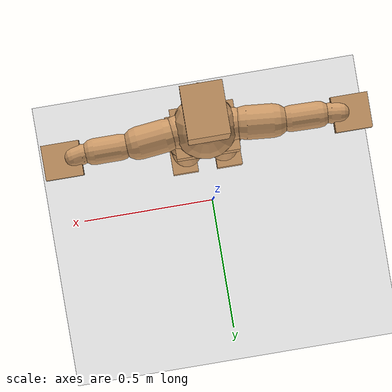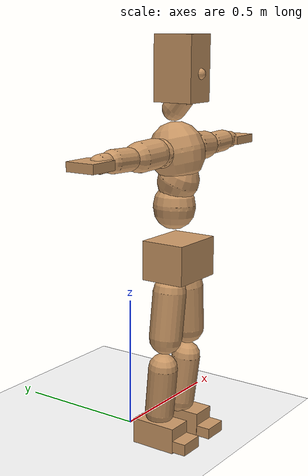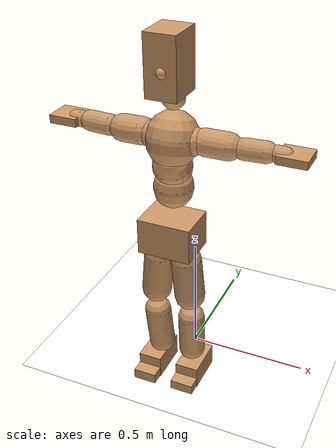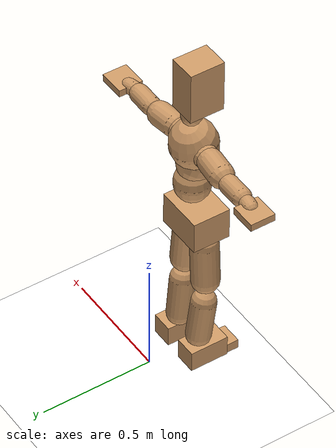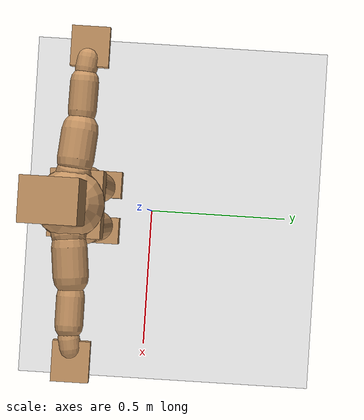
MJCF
<mujoco model="humanoid">
  <option integrator="implicitfast" />

  <visual>
    <global offwidth="1280" offheight="960" />
    <headlight active="1" ambient="0.34 0.34 0.34" diffuse="0.5 0.5 0.5" />
  </visual>

  <default>
    <joint damping="2" stiffness="2" armature="0.01" limited="true" solimplimit="0 .99 .01" />
    <geom condim="1" friction="0.7 0.005 0.0001" solimp=".99 .99 .003" solref="0.015 1" margin="0.001" rgba="0.8 0.6 .4 1" />
    <default class="smplcontact">
      <geom condim="3" friction="1. 0.005 0.0001" solref="0.015 1" solimp="0.98 0.98 0.001" priority="1" />
    </default>
    <default class="stiff_medium">
      <joint stiffness="10" />
    </default>
    <default class="stiff_medium_higher">
      <joint stiffness="50" />
    </default>
    <default class="stiff_high">
      <joint stiffness="100" />
    </default>
  </default>

  <asset>
    <texture type="skybox" builtin="gradient" rgb1="0.99 0.99 0.99" rgb2="0.608 0.828 0.892" width="100" />
    <texture builtin="flat" height="1278" mark="cross" markrgb="1 1 1" name="texgeom" random="0.01" rgb1="0.8 0.6 0.4" rgb2="0.8 0.6 0.4" type="cube" width="127" />
    <texture name="texplane" type="2d" builtin="checker" markrgb="1 1 1" rgb1="0.756 0.772 0.76" rgb2="0.6 0.6 0.6" width="100" height="100" />
    <material name="MatPlane" reflectance="0.5" texture="texplane" texrepeat="1 1" texuniform="true" />
    <material name="geom" texture="texgeom" texuniform="true" />
  </asset>

  <worldbody>
    <light name="tracking_light" pos="0 0 7" dir="0 0 -1" directional="true" cutoff="100" exponent="1" diffuse="1 1 1" specular="0.1 0.1 0.1" mode="trackcom" />
    <camera name="back" pos="0 3 2.4" xyaxes="-1 0 0 0 -1 2" mode="trackcom" />
    <camera name="side" pos="-3 0 2.4" xyaxes="0 -1 0 1 0 2" mode="trackcom" />
    <camera name="front_side" pos="-2.8 -2.8 0.8" xyaxes="0.5 -0.5 0 0.1 0.1 1" mode="trackcom" />
    <geom condim="3" name="floor" pos="0 0 0" rgba="1 1 1 1" size="100 100 .2" type="plane" material="MatPlane" />
    <body name="Pelvis" pos="-0.0018 -0.2233 0.714475" euler="90 0 0">
      <site name="Pelvis" size="0.01" />
      <freejoint name="Pelvis" />
      <geom type="box" pos="-0.0000 -0.0121 -0.0055" size="0.1069 0.0722 0.083" quat="1.0000 0.0000 0.0000 0.0000" density="3165.830099" name="Pelvis" />
      <body name="L_Hip" pos="0.052125 -0.06855 -0.0051">
        <joint name="L_Hip_x" type="hinge" pos="0 0 0" axis="1 0 0" stiffness="6.246094795918367" range="-160.0 22.92" class="stiff_medium" damping="8.291075045961078" armature="0.004891370984683404"/>
        <joint name="L_Hip_y" type="hinge" pos="0 0 0" axis="0 1 0" stiffness="6.283432346938776" range="-70.0 70.0" class="stiff_medium" damping="6.622206330553066" armature="0.006979245460609145"/>
        <joint name="L_Hip_z" type="hinge" pos="0 0 0" axis="0 0 1" stiffness="6.280236020408163" range="-28.65 90.0" class="stiff_medium" damping="5.540637852842338" armature="0.004888139190404853"/>
        <geom type="capsule" density="2040.816327" fromto="0.005175 -0.05625 -0.000675 0.02055 -0.22515 -0.0027" size="0.0615" name="L_Hip" />
        <body name="L_Knee" pos="0.025725 -0.2814 -0.003375">
          <joint name="L_Knee_x" type="hinge" pos="0 0 0" axis="1 0 0" range="-5.16 171.89" damping="4.62915338976834" armature="0.005182973512521489" stiffness="1.292034693877551"/>
          <joint name="L_Knee_y" type="hinge" pos="0 0 0" axis="0 1 0" range="-4.58 6.88" damping="5.469884734588188" armature="0.007381715461698138" stiffness="1.2666279591836735"/>
          <joint name="L_Knee_z" type="hinge" pos="0 0 0" axis="0 0 1" range="-6.88 4.58" damping="4.641672627872137" armature="0.005166231774225991" stiffness="1.3032422448979593"/>
          <geom type="capsule" density="1234.567901" fromto="-0.002025 -0.0597 -0.006525 -0.008175 -0.2388 -0.02625" size="0.0541" name="L_Knee" />
          <body name="L_Ankle" pos="-0.0102 -0.2985 -0.032775">
            <joint name="L_Ankle_x" type="hinge" pos="0 0 0" axis="1 0 0" range="-45.84 45.84" class="stiff_medium" damping="4.385268345779494" armature="0.007122436468331711" stiffness="7.5"/>
            <joint name="L_Ankle_y" type="hinge" pos="0 0 0" axis="0 1 0" range="-74.48 22.92" class="stiff_medium" damping="2.2090505910878844" armature="0.007229488168867751" stiffness="7.5"/>
            <joint name="L_Ankle_z" type="hinge" pos="0 0 0" axis="0 0 1" range="-4.58 4.58" class="stiff_medium" damping="4.627293284407198" armature="0.00793031227404443" stiffness="7.5"/>
            <geom type="box" pos="0.017475 -0.017925 0.01815" size="0.0483 0.0464 0.085" quat="1.0000 0.0000 0.0000 0.0000" density="449.071558" name="L_Ankle" class="smplcontact" />
            <body name="L_Toe" pos="0.0198 -0.04185 0.089475">
              <joint name="L_Toe_x" type="hinge" pos="0 0 0" axis="1 0 0" range="-91.67 22.92" armature="0.00833667788750395" damping="1.5814560905226502" stiffness="1.5"/>
              <joint name="L_Toe_y" type="hinge" pos="0 0 0" axis="0 1 0" range="-4.58 4.58" armature="0.008828055290798205" damping="1.6273956455759186" stiffness="1.5"/>
              <joint name="L_Toe_z" type="hinge" pos="0 0 0" axis="0 0 1" range="-4.58 4.58" armature="0.009821593951992827" damping="1.7165308577470573" stiffness="1.5"/>
              <geom type="box" pos="-0.00225 0.004125 0.0186" size="0.0478 0.02 0.0496" quat="1.0000 0.0000 0.0000 0.0000" density="423.206892" name="L_Toe" class="smplcontact" />
            </body>
          </body>
        </body>
      </body>
      <body name="R_Hip" pos="-0.050775 -0.067875 -0.003225">
        <joint name="R_Hip_x" type="hinge" pos="0 0 0" axis="1 0 0" stiffness="6.246094795918367" range="-160.0 22.92" class="stiff_medium" damping="8.291075045961078" armature="0.004891370984683404"/>
        <joint name="R_Hip_y" type="hinge" pos="0 0 0" axis="0 1 0" stiffness="6.283432346938776" range="-70.0 70.0" class="stiff_medium" damping="6.622206330553066" armature="0.006979245460609145"/>
        <joint name="R_Hip_z" type="hinge" pos="0 0 0" axis="0 0 1" stiffness="6.280236020408163" range="-90.0 28.65" class="stiff_medium" damping="5.540637852842338" armature="0.004888139190404853"/>
        <geom type="capsule" density="2040.816327" fromto="-0.005775 -0.057375 -0.00135 -0.02295 -0.229575 -0.005325" size="0.0606" name="R_Hip" />
        <body name="R_Knee" pos="-0.028725 -0.28695 -0.006675">
          <joint name="R_Knee_x" type="hinge" pos="0 0 0" axis="1 0 0" range="-5.16 171.89" damping="4.62915338976834" armature="0.005182973512521489" stiffness="1.292034693877551"/>
          <joint name="R_Knee_y" type="hinge" pos="0 0 0" axis="0 1 0" range="-6.88 4.58" damping="5.469884734588188" armature="0.007381715461698138" stiffness="1.2666279591836735"/>
          <joint name="R_Knee_z" type="hinge" pos="0 0 0" axis="0 0 1" range="-4.58 6.88" damping="4.641672627872137" armature="0.005166231774225991" stiffness="1.3032422448979593"/>
          <geom type="capsule" density="1234.567901" fromto="0.0024 -0.059775 -0.006375 0.00945 -0.239025 -0.02535" size="0.0541" name="R_Knee" />
          <body name="R_Ankle" pos="0.01185 -0.2988 -0.031725">
            <joint name="R_Ankle_x" type="hinge" pos="0 0 0" axis="1 0 0" range="-45.84 45.84" class="stiff_medium" damping="4.385268345779494" armature="0.007122436468331711" stiffness="7.5"/>
            <joint name="R_Ankle_y" type="hinge" pos="0 0 0" axis="0 1 0" range="-22.92 74.48" class="stiff_medium" damping="2.2090505910878844" armature="0.007229488168867751" stiffness="7.5"/>
            <joint name="R_Ankle_z" type="hinge" pos="0 0 0" axis="0 0 1" range="-4.58 4.58" class="stiff_medium" damping="4.627293284407198" armature="0.00793031227404443" stiffness="7.5"/>
            <geom type="box" pos="-0.0159 -0.01305 0.0192" size="0.0483 0.0478 0.0865" quat="1.0000 0.0000 0.0000 0.0000" density="434.700981" name="R_Ankle" class="smplcontact" />
            <body name="R_Toe" pos="-0.01905 -0.036075 0.092475">
              <joint name="R_Toe_x" type="hinge" pos="0 0 0" axis="1 0 0" range="-91.67 22.92" armature="0.00833667788750395" damping="1.5814560905226502" stiffness="1.5"/>
              <joint name="R_Toe_y" type="hinge" pos="0 0 0" axis="0 1 0" range="-4.58 4.58" armature="0.008828055290798205" damping="1.6273956455759186" stiffness="1.5"/>
              <joint name="R_Toe_z" type="hinge" pos="0 0 0" axis="0 0 1" range="-4.58 4.58" armature="0.009821593951992827" damping="1.7165308577470573" stiffness="1.5"/>
              <geom type="box" pos="0.00315 0.003375 0.017025" size="0.0479 0.0216 0.0493" quat="1.0000 0.0000 0.0000 0.0000" density="407.384095" name="R_Toe" class="smplcontact" />
            </body>
          </body>
        </body>
      </body>
      <body name="Torso" pos="-0.0025 0.109 -0.0267">
        <joint name="Torso_x" type="hinge" pos="0 0 0" axis="1 0 0" range="-25.78 57.3" class="stiff_medium" damping="12.833128643120638" armature="0.0083898677557267" stiffness="8.724237142857143"/>
        <joint name="Torso_y" type="hinge" pos="0 0 0" axis="0 1 0" range="-57.3 57.3" class="stiff_high" damping="9.641007877053582" armature="0.0026152511802961754" stiffness="88.85287346938776"/>
        <joint name="Torso_z" type="hinge" pos="0 0 0" axis="0 0 1" range="-34.38 34.38" class="stiff_high" damping="15.25662184807281" armature="0.006404603814601961" stiffness="90.85827826086955"/>
        <geom type="capsule" density="2040.816327" fromto="0.0025 0.0608 0.0005 0.003 0.0743 0.0006" size="0.0769" name="Torso" />
        <body name="Spine" pos="0.0055 0.1352 0.0011">
          <joint name="Spine_x" type="hinge" pos="0 0 0" axis="1 0 0" stiffness="8.524132708333333" range="-25.78 57.3" class="stiff_medium" damping="12.593328186154569" armature="0.008268911088118511"/>
          <joint name="Spine_y" type="hinge" pos="0 0 0" axis="0 1 0" stiffness="8.372724772727274" range="-57.3 57.3" class="stiff_high" damping="3.70583596472787" armature="0.0025628641978587448"/>
          <joint name="Spine_z" type="hinge" pos="0 0 0" axis="0 0 1" stiffness="17.091765581395343" range="-34.38 34.38" class="stiff_high" damping="7.91233078272408" armature="0.005087324565503502"/>
          <geom type="capsule" density="2040.816327" fromto="0.0007 0.0238 0.0114 0.0008 0.0291 0.014" size="0.0755" name="Spine" />
          <body name="Chest" pos="0.0015 0.0529 0.0254">
            <joint name="Chest_x" type="hinge" pos="0 0 0" axis="1 0 0" stiffness="8.200278372093024" range="-25.78 57.3" class="stiff_medium" damping="12.31981661549885" armature="0.008226164178146715"/>
            <joint name="Chest_y" type="hinge" pos="0 0 0" axis="0 1 0" stiffness="6.66116392857143" range="-57.3 57.3" class="stiff_high" damping="3.2862373670032503" armature="0.002533189992228513"/>
            <joint name="Chest_z" type="hinge" pos="0 0 0" axis="0 0 1" stiffness="16.64932651162791" range="-34.38 34.38" class="stiff_high" damping="7.360514262532789" armature="0.004519466278837098"/>
            <geom type="capsule" density="2040.816327" fromto="-0.0009 0.0682 -0.0173 -0.001 0.0833 -0.0212" size="0.1002" name="Chest" />
            <body name="Neck" pos="-0.0028 0.2139 -0.0429">
              <joint name="Neck_x" type="hinge" pos="0 0 0" axis="1 0 0" range="-28.65 57.3" class="stiff_medium_higher" damping="9.999999999999998" armature="0.009999999999999995" stiffness="50.0"/>
              <joint name="Neck_y" type="hinge" pos="0 0 0" axis="0 1 0" range="-40.11 40.11" class="stiff_medium_higher" damping="10.0" armature="0.01" stiffness="50.0"/>
              <joint name="Neck_z" type="hinge" pos="0 0 0" axis="0 0 1" range="-40.11 40.11" class="stiff_medium_higher" damping="9.99999999999999" armature="0.00999999999999998" stiffness="50.0"/>
              <geom type="capsule" density="1000" fromto="0.001 0.013 0.0103 0.0041 0.052 0.0411" size="0.0436" name="Neck" />
              <body name="Head" pos="0.0052 0.065 0.0513">
                <joint name="Head_x" type="hinge" pos="0 0 0" axis="1 0 0" range="-28.65 57.3" class="stiff_medium_higher" damping="2.000000000000001" armature="0.010000000000000009" stiffness="50.0"/>
                <joint name="Head_y" type="hinge" pos="0 0 0" axis="0 1 0" range="-40.11 40.11" class="stiff_medium_higher" damping="2.0" armature="0.01" stiffness="50.0"/>
                <joint name="Head_z" type="hinge" pos="0 0 0" axis="0 0 1" range="-40.11 40.11" class="stiff_medium_higher" damping="1.9999999999999982" armature="0.009999999999999983" stiffness="50.0"/>
                <geom type="box" pos="-0.0042 0.0876 -0.0116" size="0.0606 0.1154 0.076" quat="1.0000 0.0000 0.0000 0.0000" density="1018.069894" name="Head" />
                <geom type="capsule" name="nose" size="0.02 0.01" pos="0 0.07 0.05" quat="1 0 0 0" mass="0" contype="0" conaffinity="0" />
              </body>
            </body>
            <body name="L_Thorax" pos="0.04334 0.066935 -0.018755">
              <joint name="L_Thorax_x" type="hinge" pos="0 0 0" axis="1 0 0" range="-10.89 4.58" class="stiff_medium_higher" damping="8.43470362156275" armature="0.004456108006307083" stiffness="19.956940306122444"/>
              <joint name="L_Thorax_y" type="hinge" pos="0 0 0" axis="0 1 0" range="-28.65 17.19" class="stiff_medium_higher" damping="6.022763730189366" armature="0.0023084620474975964" stiffness="19.641693367346935"/>
              <joint name="L_Thorax_z" type="hinge" pos="0 0 0" axis="0 0 1" range="-31.51 40.11" class="stiff_medium_higher" damping="6.0206596523268665" armature="0.0023064402545495094" stiffness="19.64517755102041"/>
              <geom type="capsule" density="1000" fromto="0.01001 0.003355 -0.00099 0.04004 0.01342 -0.003905" size="0.0521" name="L_Thorax" />
              <body name="L_Shoulder" pos="0.05005 0.016775 -0.004895">
                <joint name="L_Shoulder_x" type="hinge" pos="0 0 0" axis="1 0 0" range="-97.4 97.4" class="stiff_medium" damping="2.7507326192703454" armature="0.00520758025412558" stiffness="4.036066215805471"/>
                <joint name="L_Shoulder_y" type="hinge" pos="0 0 0" axis="0 1 0" range="-108.86 80.21" class="stiff_medium" damping="1.829876722109635" armature="0.00235368225666454" stiffness="3.9517852040816326"/>
                <joint name="L_Shoulder_z" type="hinge" pos="0 0 0" axis="0 0 1" range="-97.4 85.94" class="stiff_medium" damping="1.829909535734246" armature="0.00235074892225839" stiffness="3.9568582653061224"/>
                <geom type="capsule" density="1000" fromto="0.028545 -0.00143 -0.003025 0.114235 -0.00561 -0.0121" size="0.0517" name="L_Shoulder" />
                <body name="L_Elbow" pos="0.14278 -0.00704 -0.015125">
                  <joint name="L_Elbow_x" type="hinge" pos="0 0 0" axis="1 0 0" range="-17.19 4.58" damping="2.63838098611622" armature="0.006602890217626892" stiffness="0.8433948163265306"/>
                  <joint name="L_Elbow_y" type="hinge" pos="0 0 0" axis="0 1 0" range="-180.0 17.19" damping="1.6493311800762023" armature="0.0025828362461048143" stiffness="0.842575551020408"/>
                  <joint name="L_Elbow_z" type="hinge" pos="0 0 0" axis="0 0 1" range="-100.84 4.58" damping="1.6457692537144113" armature="0.0025674453810837134" stiffness="0.8439693265306122"/>
                  <geom type="capsule" density="1000" fromto="0.02739 0.00099 -0.00011 0.10967 0.00396 -0.000495" size="0.0405" name="L_Elbow" />
                  <body name="L_Wrist" pos="0.13706 0.00495 -0.00066">
                    <joint name="L_Wrist_x" type="hinge" pos="0 0 0" axis="1 0 0" range="-180.0 22.92" armature="0.007461834395238918" damping="1.2279494204587518" stiffness="1.0103814285714288"/>
                    <joint name="L_Wrist_y" type="hinge" pos="0 0 0" axis="0 1 0" range="-17.19 17.19" armature="0.0036649156166127725" damping="0.8549575346764129" stiffness="0.9972294897959184"/>
                    <joint name="L_Wrist_z" type="hinge" pos="0 0 0" axis="0 0 1" range="-22.92 22.92" armature="0.0034414222692761886" damping="0.8306797080467474" stiffness="1.002534306122449"/>
                    <geom type="capsule" density="1000" fromto="0.00924 -0.00088 -0.00165 0.03696 -0.003575 -0.0066" size="0.0318" name="L_Wrist" class="smplcontact" />
                    <body name="L_Hand" pos="0.0462 -0.00451 -0.008195">
                      <joint name="L_Hand_x" type="hinge" pos="0 0 0" axis="1 0 0" range="-17.19 17.19" armature="0.009696126030368792" damping="1.4605299472044844" stiffness="1.0999999999999999"/>
                      <joint name="L_Hand_y" type="hinge" pos="0 0 0" axis="0 1 0" range="-51.57 51.57" armature="0.006325063576496694" damping="1.1796245109479848" stiffness="1.0999999999999999"/>
                      <joint name="L_Hand_z" type="hinge" pos="0 0 0" axis="0 0 1" range="-91.67 91.67" armature="0.005426460820316561" damping="1.0926213344382598" stiffness="1.0999999999999999"/>
                      <geom type="box" pos="0.027115 0.00055 -0.00319" size="0.0585 0.0158 0.0538" quat="1.0000 0.0000 0.0000 0.0000" density="400.552564" name="L_Hand" class="smplcontact" />
                    </body>
                  </body>
                </body>
              </body>
            </body>
            <body name="R_Thorax" pos="-0.04499 0.06534 -0.02123">
              <joint name="R_Thorax_x" type="hinge" pos="0 0 0" axis="1 0 0" range="-10.89 4.58" class="stiff_medium_higher" damping="8.43470362156275" armature="0.004456108006307083" stiffness="19.956940306122444"/>
              <joint name="R_Thorax_y" type="hinge" pos="0 0 0" axis="0 1 0" range="-17.19 28.65" class="stiff_medium_higher" damping="6.022763730189366" armature="0.0023084620474975964" stiffness="19.641693367346935"/>
              <joint name="R_Thorax_z" type="hinge" pos="0 0 0" axis="0 0 1" range="-40.11 31.51" class="stiff_medium_higher" damping="6.0206596523268665" armature="0.0023064402545495094" stiffness="19.64517755102041"/>
              <geom type="capsule" density="1000" fromto="-0.01056 0.003575 -0.00099 -0.04224 0.0143 -0.004015" size="0.0511" name="R_Thorax" />
              <body name="R_Shoulder" pos="-0.0528 0.01793 -0.005005">
                <joint name="R_Shoulder_x" type="hinge" pos="0 0 0" axis="1 0 0" range="-97.4 97.4" class="stiff_medium" damping="2.7507326192703454" armature="0.00520758025412558" stiffness="4.036066215805471"/>
                <joint name="R_Shoulder_y" type="hinge" pos="0 0 0" axis="0 1 0" range="-80.21 108.86" class="stiff_medium" damping="1.829876722109635" armature="0.00235368225666454" stiffness="3.9517852040816326"/>
                <joint name="R_Shoulder_z" type="hinge" pos="0 0 0" axis="0 0 1" range="-85.94 97.4" class="stiff_medium" damping="1.829909535734246" armature="0.00235074892225839" stiffness="3.9568582653061224"/>
                <geom type="capsule" density="1000" fromto="-0.027885 -0.001485 -0.002365 -0.11165 -0.005885 -0.009405" size="0.0531" name="R_Shoulder" />
                <body name="R_Elbow" pos="-0.139535 -0.007315 -0.01177">
                  <joint name="R_Elbow_x" type="hinge" pos="0 0 0" axis="1 0 0" range="-17.19 4.58" damping="2.63838098611622" armature="0.006602890217626892" stiffness="0.8433948163265306"/>
                  <joint name="R_Elbow_y" type="hinge" pos="0 0 0" axis="0 1 0" range="-17.19 180.0" damping="1.6493311800762023" armature="0.0025828362461048143" stiffness="0.842575551020408"/>
                  <joint name="R_Elbow_z" type="hinge" pos="0 0 0" axis="0 0 1" range="-4.58 100.84" damping="1.6457692537144113" armature="0.0025674453810837134" stiffness="0.8439693265306122"/>
                  <geom type="capsule" density="1000" fromto="-0.028105 0.00088 -0.000605 -0.11231 0.00341 -0.00242" size="0.0408" name="R_Elbow" />
                  <body name="R_Wrist" pos="-0.140415 0.00429 -0.00308">
                    <joint name="R_Wrist_x" type="hinge" pos="0 0 0" axis="1 0 0" range="-180.0 22.92" armature="0.007461834395238918" damping="1.2279494204587518" stiffness="1.0103814285714288"/>
                    <joint name="R_Wrist_y" type="hinge" pos="0 0 0" axis="0 1 0" range="-17.19 17.19" armature="0.0036649156166127725" damping="0.8549575346764129" stiffness="0.9972294897959184"/>
                    <joint name="R_Wrist_z" type="hinge" pos="0 0 0" axis="0 0 1" range="-22.92 22.92" armature="0.0034414222692761886" damping="0.8306797080467474" stiffness="1.002534306122449"/>
                    <geom type="capsule" density="1000" fromto="-0.009295 -0.00066 -0.001155 -0.037235 -0.002695 -0.004565" size="0.0326" name="R_Wrist" class="smplcontact" />
                    <body name="R_Hand" pos="-0.04653 -0.003355 -0.005665">
                      <joint name="R_Hand_x" type="hinge" pos="0 0 0" axis="1 0 0" range="-17.19 17.19" armature="0.009696126030368792" damping="1.4605299472044844" stiffness="1.0999999999999999"/>
                      <joint name="R_Hand_y" type="hinge" pos="0 0 0" axis="0 1 0" range="-51.57 51.57" armature="0.006325063576496694" damping="1.1796245109479848" stiffness="1.0999999999999999"/>
                      <joint name="R_Hand_z" type="hinge" pos="0 0 0" axis="0 0 1" range="-91.67 91.67" armature="0.005426460820316561" damping="1.0926213344382598" stiffness="1.0999999999999999"/>
                      <geom type="box" pos="-0.02541 -0.000495 -0.004345" size="0.0569 0.0164 0.0546" quat="1.0000 0.0000 0.0000 0.0000" density="403.679611" name="R_Hand" class="smplcontact" />
                    </body>
                  </body>
                </body>
              </body>
            </body>
          </body>
        </body>
      </body>
    </body>
  </worldbody>
  <actuator>
    <general name="L_Hip_x" joint="L_Hip_x" biastype="affine" gainprm="179.46908180691764" biasprm="-134.4938865848036 -112.42970632653059 -1.1054766727948104" ctrllimited="true" ctrlrange="-1 1" forcerange="-224.85941265306118 224.85941265306118" />
    <general name="L_Hip_y" joint="L_Hip_y" biastype="affine" gainprm="138.1798943032993" biasprm="0.0 -113.10178224489796 -1.3244412661106133" ctrllimited="true" ctrlrange="-1 1" forcerange="-226.20356448979592 226.20356448979592" />
    <general name="L_Hip_z" joint="L_Hip_z" biastype="affine" gainprm="117.04788889139031" biasprm="60.52160120932823 -113.04424836734694 -1.1081275705684677" ctrllimited="true" ctrlrange="-1 1" forcerange="-226.08849673469388 226.08849673469388" />
    <general name="L_Knee_x" joint="L_Knee_x" biastype="affine" gainprm="179.66355466802756" biasprm="169.1912141756579 -116.2831224489796 -1.157288347442085" ctrllimited="true" ctrlrange="-1 1" forcerange="-232.5662448979592 232.5662448979592" />
    <general name="L_Knee_y" joint="L_Knee_y" biastype="affine" gainprm="11.400491346869197" biasprm="2.2880567275566452 -113.99651632653062 -1.367471183647047" ctrllimited="true" ctrlrange="-1 1" forcerange="-227.99303265306125 227.99303265306125" />
    <general name="L_Knee_z" joint="L_Knee_z" biastype="affine" gainprm="11.730044191831292" biasprm="-2.3541973508910967 -117.29180204081634 -1.1604181569680343" ctrllimited="true" ctrlrange="-1 1" forcerange="-234.58360408163267 234.58360408163267" />
    <general name="L_Ankle_x" joint="L_Ankle_x" biastype="affine" gainprm="54.00397771520855" biasprm="0.0 -67.5 -1.4617561152598313" ctrllimited="true" ctrlrange="-1 1" forcerange="-135.0 135.0" />
    <general name="L_Ankle_y" joint="L_Ankle_y" biastype="affine" gainprm="57.37333583618361" biasprm="-30.371346978579332 -67.5 -1.4727003940585897" ctrllimited="true" ctrlrange="-1 1" forcerange="-135.0 135.0" />
    <general name="L_Ankle_z" joint="L_Ankle_z" biastype="affine" gainprm="5.395685382540469" biasprm="0.0 -67.5 -1.5424310948023994" ctrllimited="true" ctrlrange="-1 1" forcerange="-135.0 135.0" />
    <general name="L_Toe_x" joint="L_Toe_x" biastype="affine" gainprm="53.999265326228155" biasprm="-32.39767424014474 -54.0 -0.6325824362090602" ctrllimited="true" ctrlrange="-1 1" forcerange="-108.0 108.0" />
    <general name="L_Toe_y" joint="L_Toe_y" biastype="affine" gainprm="4.3165483060323755" biasprm="0.0 -54.0 -0.6509582582303675" ctrllimited="true" ctrlrange="-1 1" forcerange="-108.0 108.0" />
    <general name="L_Toe_z" joint="L_Toe_z" biastype="affine" gainprm="4.3165483060323755" biasprm="0.0 -54.0 -0.6866123430988229" ctrllimited="true" ctrlrange="-1 1" forcerange="-108.0 108.0" />
    <general name="R_Hip_x" joint="R_Hip_x" biastype="affine" gainprm="179.46908180691764" biasprm="-134.4938865848036 -112.42970632653059 -1.1054766727948104" ctrllimited="true" ctrlrange="-1 1" forcerange="-224.85941265306118 224.85941265306118" />
    <general name="R_Hip_y" joint="R_Hip_y" biastype="affine" gainprm="138.1798943032993" biasprm="0.0 -113.10178224489796 -1.3244412661106133" ctrllimited="true" ctrlrange="-1 1" forcerange="-226.20356448979592 226.20356448979592" />
    <general name="R_Hip_z" joint="R_Hip_z" biastype="affine" gainprm="117.04788889139031" biasprm="-60.52160120932823 -113.04424836734694 -1.1081275705684677" ctrllimited="true" ctrlrange="-1 1" forcerange="-226.08849673469388 226.08849673469388" />
    <general name="R_Knee_x" joint="R_Knee_x" biastype="affine" gainprm="179.66355466802756" biasprm="169.1912141756579 -116.2831224489796 -1.157288347442085" ctrllimited="true" ctrlrange="-1 1" forcerange="-232.5662448979592 232.5662448979592" />
    <general name="R_Knee_y" joint="R_Knee_y" biastype="affine" gainprm="11.400491346869197" biasprm="-2.2880567275566452 -113.99651632653062 -1.367471183647047" ctrllimited="true" ctrlrange="-1 1" forcerange="-227.99303265306125 227.99303265306125" />
    <general name="R_Knee_z" joint="R_Knee_z" biastype="affine" gainprm="11.730044191831292" biasprm="2.3541973508910967 -117.29180204081634 -1.1604181569680343" ctrllimited="true" ctrlrange="-1 1" forcerange="-234.58360408163267 234.58360408163267" />
    <general name="R_Ankle_x" joint="R_Ankle_x" biastype="affine" gainprm="54.00397771520855" biasprm="0.0 -67.5 -1.4617561152598313" ctrllimited="true" ctrlrange="-1 1" forcerange="-135.0 135.0" />
    <general name="R_Ankle_y" joint="R_Ankle_y" biastype="affine" gainprm="57.37333583618361" biasprm="30.371346978579332 -67.5 -1.4727003940585897" ctrllimited="true" ctrlrange="-1 1" forcerange="-135.0 135.0" />
    <general name="R_Ankle_z" joint="R_Ankle_z" biastype="affine" gainprm="5.395685382540469" biasprm="0.0 -67.5 -1.5424310948023994" ctrllimited="true" ctrlrange="-1 1" forcerange="-135.0 135.0" />
    <general name="R_Toe_x" joint="R_Toe_x" biastype="affine" gainprm="53.999265326228155" biasprm="-32.39767424014474 -54.0 -0.6325824362090602" ctrllimited="true" ctrlrange="-1 1" forcerange="-108.0 108.0" />
    <general name="R_Toe_y" joint="R_Toe_y" biastype="affine" gainprm="4.3165483060323755" biasprm="0.0 -54.0 -0.6509582582303675" ctrllimited="true" ctrlrange="-1 1" forcerange="-108.0 108.0" />
    <general name="R_Toe_z" joint="R_Toe_z" biastype="affine" gainprm="4.3165483060323755" biasprm="0.0 -54.0 -0.6866123430988229" ctrllimited="true" ctrlrange="-1 1" forcerange="-108.0 108.0" />
    <general name="Torso_x" joint="Torso_x" biastype="affine" gainprm="151.80377221252243" biasprm="57.593342563056154 -209.38169142857143 -3.4221676381655035" ctrllimited="true" ctrlrange="-1 1" forcerange="-314.07253714285713 314.07253714285713" />
    <general name="Torso_y" joint="Torso_y" biastype="affine" gainprm="213.26260438991383" biasprm="0.0 -213.24689632653062 -1.9282015754107165" ctrllimited="true" ctrlrange="-1 1" forcerange="-319.8703444897959 319.8703444897959" />
    <general name="Torso_z" joint="Torso_z" biastype="affine" gainprm="130.84555825179245" biasprm="0.0 -218.05986782608693 -3.0513243696145618" ctrllimited="true" ctrlrange="-1 1" forcerange="-327.0898017391304 327.0898017391304" />
    <general name="Spine_x" joint="Spine_x" biastype="affine" gainprm="148.32190812518058" biasprm="56.272346462514335 -204.579185 -3.3582208496412185" ctrllimited="true" ctrlrange="-1 1" forcerange="-306.86877749999996 306.86877749999996" />
    <general name="Spine_y" joint="Spine_y" biastype="affine" gainprm="200.96019646308363" biasprm="0.0 -200.94539454545458 -1.852917982363935" ctrllimited="true" ctrlrange="-1 1" forcerange="-301.41809181818184 301.41809181818184" />
    <general name="Spine_z" joint="Spine_z" biastype="affine" gainprm="123.06977700949903" biasprm="0.0 -205.10118697674412 -2.63744359424136" ctrllimited="true" ctrlrange="-1 1" forcerange="-307.6517804651162 307.6517804651162" />
    <general name="Chest_x" joint="Chest_x" biastype="affine" gainprm="142.68676672729774" biasprm="54.13441125715483 -196.80668093023257 -3.285284430799693" ctrllimited="true" ctrlrange="-1 1" forcerange="-295.21002139534886 295.21002139534886" />
    <general name="Chest_y" joint="Chest_y" biastype="affine" gainprm="159.87971038041" biasprm="0.0 -159.8679342857143 -1.6431186835016252" ctrllimited="true" ctrlrange="-1 1" forcerange="-239.80190142857145 239.80190142857145" />
    <general name="Chest_z" joint="Chest_z" biastype="affine" gainprm="119.88398105429127" biasprm="0.0 -199.7919181395349 -2.453504754177596" ctrllimited="true" ctrlrange="-1 1" forcerange="-299.68787720930237 299.68787720930237" />
    <general name="Neck_x" joint="Neck_x" biastype="affine" gainprm="27.00198885760427" biasprm="9.000662952534757 -36.0 -0.7999999999999998" ctrllimited="true" ctrlrange="-1 1" forcerange="-72.0 72.0" />
    <general name="Neck_y" joint="Neck_y" biastype="affine" gainprm="25.20185626709732" biasprm="0.0 -36.0 -0.8" ctrllimited="true" ctrlrange="-1 1" forcerange="-72.0 72.0" />
    <general name="Neck_z" joint="Neck_z" biastype="affine" gainprm="25.20185626709732" biasprm="0.0 -36.0 -0.7999999999999993" ctrllimited="true" ctrlrange="-1 1" forcerange="-72.0 72.0" />
    <general name="Head_x" joint="Head_x" biastype="affine" gainprm="18.001325905069514" biasprm="6.000441968356505 -24.0 -0.8000000000000004" ctrllimited="true" ctrlrange="-1 1" forcerange="-48.0 48.0" />
    <general name="Head_y" joint="Head_y" biastype="affine" gainprm="16.801237511398213" biasprm="0.0 -24.0 -0.8" ctrllimited="true" ctrlrange="-1 1" forcerange="-48.0 48.0" />
    <general name="Head_z" joint="Head_z" biastype="affine" gainprm="16.801237511398213" biasprm="0.0 -24.0 -0.7999999999999994" ctrllimited="true" ctrlrange="-1 1" forcerange="-48.0 48.0" />
    <general name="L_Thorax_x" joint="L_Thorax_x" biastype="affine" gainprm="6.466106980153143" biasprm="-2.6374360080650514 -47.89665673469387 -0.6747762897250201" ctrllimited="true" ctrlrange="-1 1" forcerange="-95.79331346938774 95.79331346938774" />
    <general name="L_Thorax_y" joint="L_Thorax_y" biastype="affine" gainprm="18.857414593762904" biasprm="-4.714353648440726 -47.140064081632644 -0.48182109841514936" ctrllimited="true" ctrlrange="-1 1" forcerange="-94.28012816326529 94.28012816326529" />
    <general name="L_Thorax_z" joint="L_Thorax_z" biastype="affine" gainprm="29.46787972505706" biasprm="3.538449673771163 -47.14842612244898 -0.4816527721861493" ctrllimited="true" ctrlrange="-1 1" forcerange="-94.29685224489796 94.29685224489796" />
    <general name="L_Shoulder_x" joint="L_Shoulder_x" biastype="affine" gainprm="32.93334506047744" biasprm="0.0 -19.373117835866264 -0.7335286984720921" ctrllimited="true" ctrlrange="-1 1" forcerange="-38.74623567173253 38.74623567173253" />
    <general name="L_Shoulder_y" joint="L_Shoulder_y" biastype="affine" gainprm="31.297133640991394" biasprm="-4.74249155770034 -18.968568979591836 -0.4879671258959027" ctrllimited="true" ctrlrange="-1 1" forcerange="-37.93713795918367 37.93713795918367" />
    <general name="L_Shoulder_z" joint="L_Shoulder_z" biastype="affine" gainprm="30.387595059587213" biasprm="-1.8994318718384982 -18.992919673469387 -0.487975876195799" ctrllimited="true" ctrlrange="-1 1" forcerange="-37.985839346938775 37.985839346938775" />
    <general name="L_Elbow_x" joint="L_Elbow_x" biastype="affine" gainprm="5.768185641845626" biasprm="-3.3411493313584466 -30.3622133877551 -0.4221409577785952" ctrllimited="true" ctrlrange="-1 1" forcerange="-60.7244267755102 60.7244267755102" />
    <general name="L_Elbow_y" joint="L_Elbow_y" biastype="affine" gainprm="52.19676802931011" biasprm="-43.09628177317298 -30.33271983673469 -0.26389298881219236" ctrllimited="true" ctrlrange="-1 1" forcerange="-60.66543967346938 60.66543967346938" />
    <general name="L_Elbow_z" joint="L_Elbow_z" biastype="affine" gainprm="27.951141407994328" biasprm="-25.522451830141666 -30.382895755102037 -0.2633230805943058" ctrllimited="true" ctrlrange="-1 1" forcerange="-60.765791510204075 60.765791510204075" />
    <general name="L_Wrist_x" joint="L_Wrist_x" biastype="affine" gainprm="10.735167645580283" biasprm="-8.310073594361082 -6.062288571428573 -0.49117976818350073" ctrllimited="true" ctrlrange="-1 1" forcerange="-12.124577142857145 12.124577142857145" />
    <general name="L_Wrist_y" joint="L_Wrist_y" biastype="affine" gainprm="1.7951453047962525" biasprm="0.0 -5.9833769387755105 -0.3419830138705652" ctrllimited="true" ctrlrange="-1 1" forcerange="-11.966753877551021 11.966753877551021" />
    <general name="L_Wrist_z" joint="L_Wrist_z" biastype="affine" gainprm="2.4062595700697247" biasprm="0.0 -6.015205836734694 -0.332271883218699" ctrllimited="true" ctrlrange="-1 1" forcerange="-12.030411673469388 12.030411673469388" />
    <general name="L_Hand_x" joint="L_Hand_x" biastype="affine" gainprm="1.9801458495576467" biasprm="0.0 -6.6 -0.5842119788817938" ctrllimited="true" ctrlrange="-1 1" forcerange="-13.2 13.2" />
    <general name="L_Hand_y" joint="L_Hand_y" biastype="affine" gainprm="5.940437548672939" biasprm="0.0 -6.6 -0.47184980437919394" ctrllimited="true" ctrlrange="-1 1" forcerange="-13.2 13.2" />
    <general name="L_Hand_z" joint="L_Hand_z" biastype="affine" gainprm="10.55962594700113" biasprm="0.0 -6.6 -0.43704853377530395" ctrllimited="true" ctrlrange="-1 1" forcerange="-13.2 13.2" />
    <general name="R_Thorax_x" joint="R_Thorax_x" biastype="affine" gainprm="6.466106980153143" biasprm="-2.6374360080650514 -47.89665673469387 -0.6747762897250201" ctrllimited="true" ctrlrange="-1 1" forcerange="-95.79331346938774 95.79331346938774" />
    <general name="R_Thorax_y" joint="R_Thorax_y" biastype="affine" gainprm="18.857414593762904" biasprm="4.714353648440723 -47.140064081632644 -0.48182109841514936" ctrllimited="true" ctrlrange="-1 1" forcerange="-94.28012816326529 94.28012816326529" />
    <general name="R_Thorax_z" joint="R_Thorax_z" biastype="affine" gainprm="29.46787972505706" biasprm="-3.538449673771163 -47.14842612244898 -0.4816527721861493" ctrllimited="true" ctrlrange="-1 1" forcerange="-94.29685224489796 94.29685224489796" />
    <general name="R_Shoulder_x" joint="R_Shoulder_x" biastype="affine" gainprm="32.93334506047744" biasprm="0.0 -19.373117835866264 -0.7335286984720921" ctrllimited="true" ctrlrange="-1 1" forcerange="-38.74623567173253 38.74623567173253" />
    <general name="R_Shoulder_y" joint="R_Shoulder_y" biastype="affine" gainprm="31.297133640991394" biasprm="4.74249155770034 -18.968568979591836 -0.4879671258959027" ctrllimited="true" ctrlrange="-1 1" forcerange="-37.93713795918367 37.93713795918367" />
    <general name="R_Shoulder_z" joint="R_Shoulder_z" biastype="affine" gainprm="30.387595059587213" biasprm="1.899431871838494 -18.992919673469387 -0.487975876195799" ctrllimited="true" ctrlrange="-1 1" forcerange="-37.985839346938775 37.985839346938775" />
    <general name="R_Elbow_x" joint="R_Elbow_x" biastype="affine" gainprm="5.768185641845626" biasprm="-3.3411493313584466 -30.3622133877551 -0.4221409577785952" ctrllimited="true" ctrlrange="-1 1" forcerange="-60.7244267755102 60.7244267755102" />
    <general name="R_Elbow_y" joint="R_Elbow_y" biastype="affine" gainprm="52.19676802931011" biasprm="43.09628177317298 -30.33271983673469 -0.26389298881219236" ctrllimited="true" ctrlrange="-1 1" forcerange="-60.66543967346938 60.66543967346938" />
    <general name="R_Elbow_z" joint="R_Elbow_z" biastype="affine" gainprm="27.951141407994328" biasprm="25.522451830141662 -30.382895755102037 -0.2633230805943058" ctrllimited="true" ctrlrange="-1 1" forcerange="-60.765791510204075 60.765791510204075" />
    <general name="R_Wrist_x" joint="R_Wrist_x" biastype="affine" gainprm="10.735167645580283" biasprm="-8.310073594361082 -6.062288571428573 -0.49117976818350073" ctrllimited="true" ctrlrange="-1 1" forcerange="-12.124577142857145 12.124577142857145" />
    <general name="R_Wrist_y" joint="R_Wrist_y" biastype="affine" gainprm="1.7951453047962525" biasprm="0.0 -5.9833769387755105 -0.3419830138705652" ctrllimited="true" ctrlrange="-1 1" forcerange="-11.966753877551021 11.966753877551021" />
    <general name="R_Wrist_z" joint="R_Wrist_z" biastype="affine" gainprm="2.4062595700697247" biasprm="0.0 -6.015205836734694 -0.332271883218699" ctrllimited="true" ctrlrange="-1 1" forcerange="-12.030411673469388 12.030411673469388" />
    <general name="R_Hand_x" joint="R_Hand_x" biastype="affine" gainprm="1.9801458495576467" biasprm="0.0 -6.6 -0.5842119788817938" ctrllimited="true" ctrlrange="-1 1" forcerange="-13.2 13.2" />
    <general name="R_Hand_y" joint="R_Hand_y" biastype="affine" gainprm="5.940437548672939" biasprm="0.0 -6.6 -0.47184980437919394" ctrllimited="true" ctrlrange="-1 1" forcerange="-13.2 13.2" />
    <general name="R_Hand_z" joint="R_Hand_z" biastype="affine" gainprm="10.55962594700113" biasprm="0.0 -6.6 -0.43704853377530395" ctrllimited="true" ctrlrange="-1 1" forcerange="-13.2 13.2" />
  </actuator>
  <contact>
    <exclude body1="Torso" body2="Chest" />
    <exclude body1="Head" body2="Chest" />
    <exclude body1="R_Knee" body2="R_Toe" />
    <exclude body1="R_Knee" body2="L_Ankle" />
    <exclude body1="R_Knee" body2="L_Toe" />
    <exclude body1="L_Knee" body2="L_Toe" />
    <exclude body1="L_Knee" body2="R_Ankle" />
    <exclude body1="L_Knee" body2="R_Toe" />
    <exclude body1="L_Shoulder" body2="Chest" />
    <exclude body1="R_Shoulder" body2="Chest" />
  </contact>
  <sensor>
    <framelinvel name="sensor_Pelvis_framelinvel" objtype="xbody" objname="Pelvis" />
    <framelinvel name="sensor_L_Hip_framelinvel" objtype="xbody" objname="L_Hip" />
    <framelinvel name="sensor_L_Knee_framelinvel" objtype="xbody" objname="L_Knee" />
    <framelinvel name="sensor_L_Ankle_framelinvel" objtype="xbody" objname="L_Ankle" />
    <framelinvel name="sensor_L_Toe_framelinvel" objtype="xbody" objname="L_Toe" />
    <framelinvel name="sensor_R_Hip_framelinvel" objtype="xbody" objname="R_Hip" />
    <framelinvel name="sensor_R_Knee_framelinvel" objtype="xbody" objname="R_Knee" />
    <framelinvel name="sensor_R_Ankle_framelinvel" objtype="xbody" objname="R_Ankle" />
    <framelinvel name="sensor_R_Toe_framelinvel" objtype="xbody" objname="R_Toe" />
    <framelinvel name="sensor_Torso_framelinvel" objtype="xbody" objname="Torso" />
    <framelinvel name="sensor_Spine_framelinvel" objtype="xbody" objname="Spine" />
    <framelinvel name="sensor_Chest_framelinvel" objtype="xbody" objname="Chest" />
    <framelinvel name="sensor_Neck_framelinvel" objtype="xbody" objname="Neck" />
    <framelinvel name="sensor_Head_framelinvel" objtype="xbody" objname="Head" />
    <framelinvel name="sensor_L_Thorax_framelinvel" objtype="xbody" objname="L_Thorax" />
    <framelinvel name="sensor_L_Shoulder_framelinvel" objtype="xbody" objname="L_Shoulder" />
    <framelinvel name="sensor_L_Elbow_framelinvel" objtype="xbody" objname="L_Elbow" />
    <framelinvel name="sensor_L_Wrist_framelinvel" objtype="xbody" objname="L_Wrist" />
    <framelinvel name="sensor_L_Hand_framelinvel" objtype="xbody" objname="L_Hand" />
    <framelinvel name="sensor_R_Thorax_framelinvel" objtype="xbody" objname="R_Thorax" />
    <framelinvel name="sensor_R_Shoulder_framelinvel" objtype="xbody" objname="R_Shoulder" />
    <framelinvel name="sensor_R_Elbow_framelinvel" objtype="xbody" objname="R_Elbow" />
    <framelinvel name="sensor_R_Wrist_framelinvel" objtype="xbody" objname="R_Wrist" />
    <framelinvel name="sensor_R_Hand_framelinvel" objtype="xbody" objname="R_Hand" />
    <frameangvel name="sensor_Pelvis_frameangvel" objtype="xbody" objname="Pelvis" />
    <frameangvel name="sensor_L_Hip_frameangvel" objtype="xbody" objname="L_Hip" />
    <frameangvel name="sensor_L_Knee_frameangvel" objtype="xbody" objname="L_Knee" />
    <frameangvel name="sensor_L_Ankle_frameangvel" objtype="xbody" objname="L_Ankle" />
    <frameangvel name="sensor_L_Toe_frameangvel" objtype="xbody" objname="L_Toe" />
    <frameangvel name="sensor_R_Hip_frameangvel" objtype="xbody" objname="R_Hip" />
    <frameangvel name="sensor_R_Knee_frameangvel" objtype="xbody" objname="R_Knee" />
    <frameangvel name="sensor_R_Ankle_frameangvel" objtype="xbody" objname="R_Ankle" />
    <frameangvel name="sensor_R_Toe_frameangvel" objtype="xbody" objname="R_Toe" />
    <frameangvel name="sensor_Torso_frameangvel" objtype="xbody" objname="Torso" />
    <frameangvel name="sensor_Spine_frameangvel" objtype="xbody" objname="Spine" />
    <frameangvel name="sensor_Chest_frameangvel" objtype="xbody" objname="Chest" />
    <frameangvel name="sensor_Neck_frameangvel" objtype="xbody" objname="Neck" />
    <frameangvel name="sensor_Head_frameangvel" objtype="xbody" objname="Head" />
    <frameangvel name="sensor_L_Thorax_frameangvel" objtype="xbody" objname="L_Thorax" />
    <frameangvel name="sensor_L_Shoulder_frameangvel" objtype="xbody" objname="L_Shoulder" />
    <frameangvel name="sensor_L_Elbow_frameangvel" objtype="xbody" objname="L_Elbow" />
    <frameangvel name="sensor_L_Wrist_frameangvel" objtype="xbody" objname="L_Wrist" />
    <frameangvel name="sensor_L_Hand_frameangvel" objtype="xbody" objname="L_Hand" />
    <frameangvel name="sensor_R_Thorax_frameangvel" objtype="xbody" objname="R_Thorax" />
    <frameangvel name="sensor_R_Shoulder_frameangvel" objtype="xbody" objname="R_Shoulder" />
    <frameangvel name="sensor_R_Elbow_frameangvel" objtype="xbody" objname="R_Elbow" />
    <frameangvel name="sensor_R_Wrist_frameangvel" objtype="xbody" objname="R_Wrist" />
    <frameangvel name="sensor_R_Hand_frameangvel" objtype="xbody" objname="R_Hand" />
    <subtreelinvel name="Chest_subtreelinvel" body="Chest" />
    <gyro name="Pelvis_gyro" site="Pelvis" />
  </sensor>
</mujoco>
